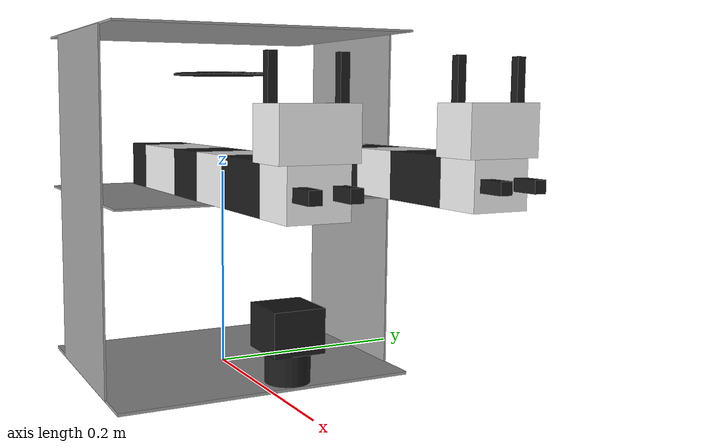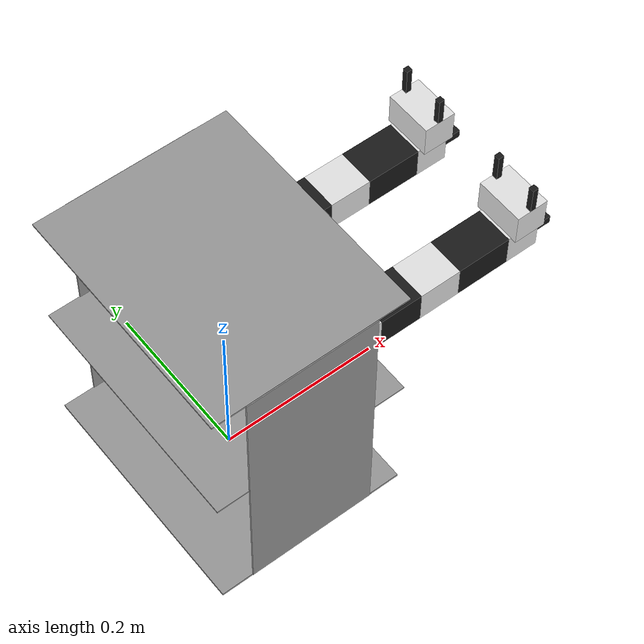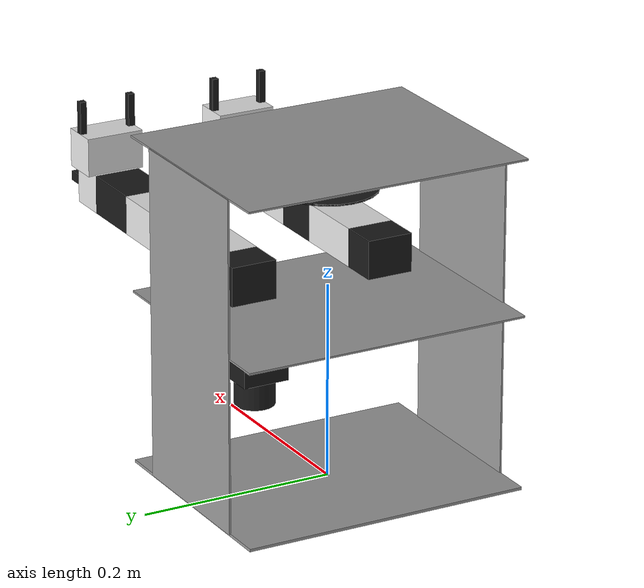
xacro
<?xml version="1.0"?>

<!-- XML namespaces -->
<robot xmlns:sensor="http://playerstage.sourceforge.net/gazebo/xmlschema/#sensor"
       xmlns:controller="http://playerstage.sourceforge.net/gazebo/xmlschema/#controller"
       xmlns:interface="http://playerstage.sourceforge.net/gazebo/xmlschema/#interface"
       xmlns:xacro="http://ros.org/wiki/xacro"
	   name="indomptable">

	<xacro:macro name="cyan1">
		<material name="cyan1">
			<color rgba="0 0.9 0.9 1.0"/>
		</material>
	</xacro:macro>

	<xacro:macro name="cyan2">
		<material name="cyan2">
	     <color rgba="0 0.7 0.7 1.0"/>
		</material>
	</xacro:macro>

	<xacro:macro name="cyan3">
		<material name="cyan3">
	     <color rgba="0 0.5 0.5 1.0"/>
		</material>
	</xacro:macro>

	<xacro:macro name="black">
		<material name="black">
			<color rgba="0.1 0.1 0.1 1.0"/>
		</material>
	</xacro:macro>

	<xacro:macro name="black1">
		<material name="black1">
			<color rgba="0.2 0.2 0.2 1.0"/>
		</material>
	</xacro:macro>

	<xacro:macro name="yellow2">
		<material name="yellow2">
			<color rgba="0.8 0.8 0 1.0"/>
		</material>
	</xacro:macro>

	<xacro:macro name="green1">
		<material name="green1">
			<color rgba="0 1 0 1.0"/>
		</material>
	</xacro:macro>

	<xacro:macro name="green2">
		<material name="green2">
			<color rgba="0.1 0.8 0 1.0"/>
		</material>
	</xacro:macro>

	<xacro:macro name="green3">
		<material name="green3">
			<color rgba="0.1 0.5 0.1 1.0"/>
		</material>
	</xacro:macro>

	<xacro:macro name="grey1">
		<material name="grey1">
			<color rgba="0.9 0.9 0.9 1.0"/>
		</material>
	</xacro:macro>

	<xacro:macro name="grey2">
		<material name="grey2">
			<color rgba="0.6 0.6 0.6 1.0"/>
		</material>
	</xacro:macro>

	<xacro:macro name="grey3">
		<material name="grey3">
			<color rgba="0.8 0.8 0.8 1.0"/>
		</material>
	</xacro:macro>

	<xacro:macro name="blue1">
		<material name="blue1">
			<color rgba="0 0 0.9 1.0"/>
		</material>
	</xacro:macro>

	<xacro:macro name="ax12_color">
		<material name="ax12_color">
			<color rgba="0.1 0.1 0.1 1.0"/>
		</material>
	</xacro:macro>

	<xacro:macro name="bracket_color">
		<material name="bracket_color">
			<color rgba="0.9 0.9 0.9 1.0"/>
		</material>
	</xacro:macro>

	<xacro:macro name="ax12" params="name xyz rpy">
		<link name="${name}">
			<visual>
				<origin xyz="${xyz}" rpy="${rpy}" />
				<geometry>
					<box size="0.5 0.32 0.38" />
				</geometry>
				<material name="black1">
					<color rgba="0.2 0.2 0.2 1.0"/>
				</material>
             </visual>
             <collision>
				<origin xyz="${xyz}" rpy="${rpy}" />
					<geometry>
						<box size="0.5 0.32 0.38" />
					</geometry>
             </collision>
             <xacro:default_inertial mass="0.055" />
        </link>
        <xacro:default_gazebo name="${name}" material="Gazebo/FlatBlack" />
	</xacro:macro>

	<xacro:macro name="bracket1" params="name xyz rpy">
		<link name="${name}">
			<visual>
				<origin xyz="${xyz}" rpy="${rpy}" />
				<geometry>
					<box size="0.05 0.025 0.038" />
				</geometry>
				<material name="black1">
					<color rgba="0.2 0.2 0.2 1.0"/>
				</material>
             </visual>
             <collision>
				<origin xyz="${xyz}" rpy="${rpy}" />
					<geometry>
						<box size="0.05 0.025 0.038" />
					</geometry>
             </collision>
             <xacro:default_inertial mass="0.02" />
        </link>
        <xacro:default_gazebo name="${name}" material="Gazebo/WhiteEmissive" />
	</xacro:macro>

	<xacro:macro name="my_box" params="name lwh xyz rpy mass material *rviz_color">
		<link name="${name}">
			<visual>
				<origin xyz="${xyz}" rpy="${rpy}" />
				<geometry>
					<box size="${lwh}" />
				</geometry>
			    <xacro:insert_block name="rviz_color" />
             </visual>
             <collision>
				<origin xyz="${xyz}" rpy="${rpy}" />
					<geometry>
						<box size="${lwh}" />
					</geometry>
             </collision>
             <xacro:default_inertial mass="${mass}" />
        </link>
        <xacro:default_gazebo name="${name}" material="${material}" />
	</xacro:macro>

	<xacro:macro name="my_cylinder" params="name l r xyz rpy mass material *rviz_color">
		<link name="${name}">
			<visual>
				<origin xyz="${xyz}" rpy="${rpy}" />
				<geometry>
					<cylinder length="${l}" radius="${r}" />
				</geometry>
            	<xacro:insert_block name="rviz_color" />
            </visual>
            <collision>
				<origin xyz="${xyz}" rpy="${rpy}" />
					<geometry>
						<cylinder length="${l}" radius="${r}" />
					</geometry>
            </collision>
            <xacro:default_inertial mass="${mass}" />
        </link>
        <xacro:default_gazebo name="${name}" material="${material}" />
	</xacro:macro>

    <xacro:macro name="default_inertial" params="mass">
		<inertial>
			<mass value="${mass}" />
			<inertia ixx="0.001" ixy="0.0" ixz="0.0"
                     iyy="0.001" iyz="0.0"
                     izz="0.001" />
			</inertial>
    </xacro:macro>

    <xacro:macro name="default_gazebo" params="name material">
 		<gazebo reference="${name}">
			<material>${material}</material>
			<selfCollide>false</selfCollide>
			<turnGravityOff>true</turnGravityOff>
		</gazebo>
    </xacro:macro>

 	<!-- ============================   Body   ============================ -->

	<xacro:my_box name="base_link" lwh="0.24 0.3 0.003" xyz="0 0 0" rpy="0 0 0" mass="0.5" material="Gazebo/Grey">
		<xacro:grey2 />
	</xacro:my_box>

	<xacro:my_box name="arm_level_link" lwh="0.24 0.3 0.002" xyz="0 0 0" rpy="0 0 0" mass="0.5" material="Gazebo/Grey">
		<xacro:grey2 />
	</xacro:my_box>

        <xacro:my_box name="right_panel" lwh="0.16 0.002 0.34" xyz="0 0 0" rpy="0 0 0" mass="0.5" material="Gazebo/Grey">
                <xacro:grey2 />
        </xacro:my_box>

        <xacro:my_box name="left_panel" lwh="0.16 0.002 0.34" xyz="0 0 0" rpy="0 0 0" mass="0.5" material="Gazebo/Grey">
                <xacro:grey2 />
        </xacro:my_box>

        <xacro:my_box name="top_level" lwh="0.24 0.3 0.002" xyz="0 0 0" rpy="0 0 0" mass="0.5" material="Gazebo/Grey">
                <xacro:grey2 />
        </xacro:my_box>

        <xacro:my_box name="base_laser" lwh="0.05 0.05 0.041" xyz="0 0 0" rpy="0 0 0" mass="0.5" material="Gazebo/FlatBlack">
                <xacro:ax12_color />
        </xacro:my_box>

        <xacro:my_cylinder name="hokuyo_laser" l="0.029" r="0.021" xyz="0 0 0" rpy="0 0 0" mass="0.5" material="Gazebo/FlatBlack">
                <xacro:ax12_color />
        </xacro:my_cylinder>

        <xacro:my_cylinder name="gros_base_laser_link" l="0.002" r="0.05" xyz="0 0 0" rpy="0 0 0" mass="0.5" material="Gazebo/FlatBlack">
                <xacro:ax12_color />
        </xacro:my_cylinder>

        <xacro:my_cylinder name="gros_neato_link" l="0.002" r="0.05" xyz="0 0 0" rpy="0 0 0" mass="0.5" material="Gazebo/FlatBlack">
                <xacro:ax12_color />
        </xacro:my_cylinder>

 	<!-- ============================   Arms   ============================ -->

                <xacro:my_box name="Rlink1" lwh="0.04 0.048 0.04" xyz="-0.02 0 0" rpy="0 0 0" mass="0.055" material="Gazebo/FlatBlack">
                        <xacro:ax12_color />
                </xacro:my_box>

		<xacro:my_box name="Rlink2" lwh="0.0797 0.048 0.04" xyz="0.03985 0 0" rpy="0 0 0" mass="0.055" material="Gazebo/WhiteEmissive">
                        <xacro:bracket_color />
                </xacro:my_box>

                <xacro:my_box name="Rlink3" lwh="0.053 0.048 0.04" xyz="0.0265 0 0" rpy="0 0 0" mass="0.05" material="Gazebo/FlatBlack">
                        <xacro:ax12_color />
                </xacro:my_box>

                <xacro:my_box name="Rlink4" lwh="0.052 0.048 0.04" xyz="0.026 0 0" rpy="0 0 0" mass="0.05" material="Gazebo/WhiteEmissive">
                        <xacro:bracket_color />
                </xacro:my_box>

                <xacro:my_box name="Rlink5" lwh="0.0675 0.048 0.04" xyz="0.03375 0 0" rpy="0 0 0" mass="0.05" material="Gazebo/FlatBlack">
                        <xacro:ax12_color />
                </xacro:my_box>

                <xacro:my_box name="Rlink6" lwh="0.0415 0.048 0.04" xyz="0.02075 0 0" rpy="0 0 0" mass="0.05" material="Gazebo/WhiteEmissive">
                        <xacro:bracket_color />
                </xacro:my_box>

                <xacro:my_box name="Rlink7" lwh="0.0001 0.0001 0.0001" xyz="0.00005 0 0" rpy="0 0 0" mass="0.05" material="Gazebo/WhiteEmissive">
                        <xacro:bracket_color />
                </xacro:my_box>

                <xacro:my_box name="Rlink_base_grip" lwh="0.04 0.061 0.04" xyz="0.0 0 0" rpy="0 0 0" mass="0.05" material="Gazebo/WhiteEmissive">
                        <xacro:bracket_color />
                </xacro:my_box>

                <xacro:my_box name="Rlink_finger1" lwh="0.007 0.007 0.034" xyz="0.0 0 0" rpy="0 0 0" mass="0.05" material="Gazebo/FlatBlack">
                        <xacro:ax12_color />
                </xacro:my_box>

                <xacro:my_box name="Rlink_finger2" lwh="0.007 0.007 0.034" xyz="0.0 0 0" rpy="0 0 0" mass="0.05" material="Gazebo/FlatBlack">
                        <xacro:ax12_color />
                </xacro:my_box>

                <xacro:my_box name="Rlink_pump1" lwh="0.022 0.01 0.01" xyz="0.0 0 0" rpy="0 0 0" mass="0.05" material="Gazebo/FlatBlack">
                        <xacro:ax12_color />
                </xacro:my_box>

                <xacro:my_box name="Rlink_pump2" lwh="0.022 0.01 0.01" xyz="0.0 0 0" rpy="0 0 0" mass="0.05" material="Gazebo/FlatBlack">
                        <xacro:ax12_color />
                </xacro:my_box>

                <xacro:my_box name="Llink1" lwh="0.04 0.048 0.04" xyz="-0.02 0 0" rpy="0 0 0" mass="0.055" material="Gazebo/FlatBlack">
                        <xacro:ax12_color />
                </xacro:my_box>

                <xacro:my_box name="Llink2" lwh="0.0797 0.048 0.04" xyz="0.03985 0 0" rpy="0 0 0" mass="0.055" material="Gazebo/WhiteEmissive">
                        <xacro:bracket_color />
                </xacro:my_box>

                <xacro:my_box name="Llink3" lwh="0.053 0.048 0.04" xyz="0.0265 0 0" rpy="0 0 0" mass="0.05" material="Gazebo/FlatBlack">
                        <xacro:ax12_color />
                </xacro:my_box>

                <xacro:my_box name="Llink4" lwh="0.052 0.048 0.04" xyz="0.026 0 0" rpy="0 0 0" mass="0.05" material="Gazebo/WhiteEmissive">
                        <xacro:bracket_color />
                </xacro:my_box>

                <xacro:my_box name="Llink5" lwh="0.0675 0.048 0.04" xyz="0.03375 0 0" rpy="0 0 0" mass="0.05" material="Gazebo/FlatBlack">
                        <xacro:ax12_color />
                </xacro:my_box>

                <xacro:my_box name="Llink6" lwh="0.04 0.048 0.04" xyz="0.02 0 0" rpy="0 0 0" mass="0.05" material="Gazebo/WhiteEmissive">
                        <xacro:bracket_color />
                </xacro:my_box>

                <xacro:my_box name="Llink7" lwh="0.0001 0.0001 0.0001" xyz="0.00005 0 0" rpy="0 0 0" mass="0.05" material="Gazebo/WhiteEmissive">
                        <xacro:bracket_color />
                </xacro:my_box>

                <xacro:my_box name="Llink_base_grip" lwh="0.04 0.061 0.04" xyz="0.0 0 0" rpy="0 0 0" mass="0.05" material="Gazebo/WhiteEmissive">
                        <xacro:bracket_color />
                </xacro:my_box>

                <xacro:my_box name="Llink_finger1" lwh="0.007 0.007 0.034" xyz="0.0 0 0" rpy="0 0 0" mass="0.05" material="Gazebo/FlatBlack">
                        <xacro:ax12_color />
                </xacro:my_box>

                <xacro:my_box name="Llink_finger2" lwh="0.007 0.007 0.034" xyz="0.0 0 0" rpy="0 0 0" mass="0.05" material="Gazebo/FlatBlack">
                        <xacro:ax12_color />
                </xacro:my_box>

                <xacro:my_box name="Llink_pump1" lwh="0.022 0.01 0.01" xyz="0.0 0 0" rpy="0 0 0" mass="0.05" material="Gazebo/FlatBlack">
                        <xacro:ax12_color />
                </xacro:my_box>

                <xacro:my_box name="Llink_pump2" lwh="0.022 0.01 0.01" xyz="0.0 0 0" rpy="0 0 0" mass="0.05" material="Gazebo/FlatBlack">
                        <xacro:ax12_color />
                </xacro:my_box>

	<!-- =================== Joint Definitions ==================== -->

        <joint name="arm_level_joint" type="fixed">
        <parent link="base_link" />
        <child link="arm_level_link" />
        <origin xyz="0 0 0.180" rpy="0 0 0" />
        </joint>

        <joint name="rightarm_joint" type="fixed">
        <parent link="arm_level_link" />
        <child link="Rlink1" />
        <origin xyz="0.05 -0.075 0.032" rpy="0 0 0" />
        </joint>

        <joint name="leftarm_joint" type="fixed">
        <parent link="arm_level_link" />
        <child link="Llink1" />
        <origin xyz="0.05 0.075 0.032" rpy="0 0 0" />
        </joint>

        <joint name="left_panel_joint" type="fixed">
        <parent link="base_link" />
        <child link="left_panel" />
        <origin xyz="0 0.15 0.17" rpy="0 0 0" />
        </joint>

        <joint name="right_panel_joint" type="fixed">
        <parent link="base_link" />
        <child link="right_panel" />
        <origin xyz="0 -0.15 0.17" rpy="0 0 0" />
        </joint>

        <joint name="top_level_joint" type="fixed">
        <parent link="base_link" />
        <child link="top_level" />
        <origin xyz="0 0 0.34" rpy="0 0 0" />
        </joint>

	<!-- =================== LASER Definitions ==================== -->

        <joint name="base_laser_joint" type="prismatic">
        <parent link="base_link" />
        <child link="base_laser" />
        <origin xyz="0.15 0 0.07" rpy="0 0 0" />
        <limit lower="0.0" upper="0.15" effort="10" velocity="3" />
        <axis xyz="0 0 1" />
        </joint>

        <joint name="laser_joint" type="fixed">
        <parent link="base_laser" />
        <child link="hokuyo_laser" />
        <origin xyz="0 0 -0.035" rpy="3.141592653 0 0" />
        </joint>

        <joint name="gros_base_laser_joint" type="fixed">
        <parent link="top_level" />
        <child link="gros_base_laser_link" />
        <origin xyz="0.0 0.0 -0.04" rpy="0 0 0" />
        </joint>

        <joint name="gros_neato_joint" type="fixed">
        <parent link="gros_base_laser_link" />
        <child link="gros_neato_link" />
        <origin xyz="0 0.0 0.0" rpy="3.141592653 0 0" />
        </joint>

 	<!-- =================== RIGHT ARM Definitions ==================== -->

        <joint name="Rarm1_joint" type="revolute">
        <parent link="Rlink1" />
        <child link="Rlink2" />
        <origin xyz="0.0 0 0" rpy="0 0 0" />
        <limit lower="-0.53" upper="0.53" effort="10" velocity="3" />
        <axis xyz="0 0 1" />
        <dynamics damping="0.0"/>
        </joint>

        <joint name="Rarm2_joint" type="revolute">
        <parent link="Rlink2" />
        <child link="Rlink3" />
        <origin xyz="0.0797 0 0" rpy="0 0 0" />
        <limit lower="-2.53" upper="1.57" effort="10" velocity="3" />
        <axis xyz="0 1 0" />
        <dynamics damping="0.0"/>
        </joint>

        <joint name="Rarm3_joint" type="revolute">
        <parent link="Rlink3" />
        <child link="Rlink4" />
        <origin xyz="0.053 0 0" rpy="0 0 0" />
        <limit lower="-2.53" upper="2.53" effort="10" velocity="3" />
        <axis xyz="1 0 0" />
        <dynamics damping="0.0"/>
        </joint>

        <joint name="Rarm4_joint" type="revolute">
        <parent link="Rlink4" />
        <child link="Rlink5" />
        <origin xyz="0.052 0 0" rpy="0 0 0" />
        <limit lower="-2.3" upper="2.3" effort="10" velocity="3" />
        <axis xyz="0 1 0" />
        <dynamics damping="0.0"/>
        </joint>

        <joint name="Rarm5_joint" type="revolute">
        <parent link="Rlink5" />
        <child link="Rlink6" />
        <origin xyz="0.0675 0 0" rpy="0 0 0" />
        <limit lower="-1.57" upper="1.57" effort="10" velocity="3" />
        <axis xyz="0 1 0" />
        <dynamics damping="0.0"/>
        </joint>

        <joint name="Rarm6_joint" type="revolute">
        <parent link="Rlink6" />
        <child link="Rlink7" />
        <origin xyz="0.0 0 0" rpy="0 0 0" />
        <limit lower="-2.53" upper="2.53" effort="10" velocity="3" />
        <axis xyz="1 0 0" />
        <dynamics damping="0.0"/>
        </joint>

        <joint name="Rlink_base_grip_joint" type="fixed">
        <parent link="Rlink6" />
        <child link="Rlink_base_grip" />
        <origin xyz="0.023 0.0 0.039" rpy="0 0 0" />
        </joint>

        <joint name="Rlink_finger1_joint" type="fixed">
        <parent link="Rlink_base_grip" />
        <child link="Rlink_finger1" />
        <origin xyz="0.0 0.027 0.037" rpy="0 0 0" />
        </joint>

        <joint name="Rlink_finger2_joint" type="fixed">
        <parent link="Rlink_base_grip" />
        <child link="Rlink_finger2" />
        <origin xyz="0.0 -0.027 0.037" rpy="0 0 0" />
        </joint>

        <joint name="Rlink_pump1_joint" type="fixed">
        <parent link="Rlink6" />
        <child link="Rlink_pump1" />
        <origin xyz="0.0525 0.015 0.0" rpy="0 0 0" />
        </joint>

        <joint name="Rlink_pump2_joint" type="fixed">
        <parent link="Rlink6" />
        <child link="Rlink_pump2" />
        <origin xyz="0.0525 -0.015 0.0" rpy="0 0 0" />
        </joint>

	<!-- =================== LEFT ARM Definitions ==================== -->

        <joint name="Larm1_joint" type="revolute">
        <parent link="Llink1" />
        <child link="Llink2" />
        <origin xyz="0.0 0 0" rpy="0 0 0" />
        <limit lower="-2.53" upper="2.53" effort="10" velocity="3" />
        <axis xyz="0 0 1" />
        <dynamics damping="0.0"/>
        </joint>

        <joint name="Larm2_joint" type="revolute">
        <parent link="Llink2" />
        <child link="Llink3" />
        <origin xyz="0.0797 0 0" rpy="0 0 0" />
        <limit lower="-2.53" upper="2.53" effort="10" velocity="3" />
        <axis xyz="0 1 0" />
        <dynamics damping="0.0"/>
        </joint>

        <joint name="Larm3_joint" type="revolute">
        <parent link="Llink3" />
        <child link="Llink4" />
        <origin xyz="0.053 0 0" rpy="0 0 0" />
        <limit lower="-2.53" upper="2.53" effort="10" velocity="3" />
        <axis xyz="1 0 0" />
        <dynamics damping="0.0"/>
        </joint>

        <joint name="Larm4_joint" type="revolute">
        <parent link="Llink4" />
        <child link="Llink5" />
        <origin xyz="0.052 0 0" rpy="0 0 0" />
        <limit lower="-2.53" upper="2.53" effort="10" velocity="3" />
        <axis xyz="0 1 0" />
        <dynamics damping="0.0"/>
        </joint>

        <joint name="Larm5_joint" type="revolute">
        <parent link="Llink5" />
        <child link="Llink6" />
        <origin xyz="0.0675 0 0" rpy="0 0 0" />
        <limit lower="-2.53" upper="2.53" effort="10" velocity="3" />
        <axis xyz="0 1 0" />
        <dynamics damping="0.0"/>
        </joint>

        <joint name="Larm6_joint" type="revolute">
        <parent link="Llink6" />
        <child link="Llink7" />
        <origin xyz="0.0 0 0" rpy="0 0 0" />
        <limit lower="-2.53" upper="2.53" effort="10" velocity="3" />
        <axis xyz="1 0 0" />
        <dynamics damping="0.0"/>
        </joint>

        <joint name="Llink_base_grip_joint" type="fixed">
        <parent link="Llink6" />
        <child link="Llink_base_grip" />
        <origin xyz="0.023 0.0 0.039" rpy="0 0 0" />
        </joint>

        <joint name="Llink_finger1_joint" type="fixed">
        <parent link="Llink_base_grip" />
        <child link="Llink_finger1" />
        <origin xyz="0.0 0.027 0.037" rpy="0 0 0" />
        </joint>

        <joint name="Llink_finger2_joint" type="fixed">
        <parent link="Llink_base_grip" />
        <child link="Llink_finger2" />
        <origin xyz="0.0 -0.027 0.037" rpy="0 0 0" />
        </joint>

        <joint name="Llink_pump1_joint" type="fixed">
        <parent link="Llink6" />
        <child link="Llink_pump1" />
        <origin xyz="0.0525 0.015 0.0" rpy="0 0 0" />
        </joint>

        <joint name="Llink_pump2_joint" type="fixed">
        <parent link="Llink6" />
        <child link="Llink_pump2" />
        <origin xyz="0.0525 -0.015 0.0" rpy="0 0 0" />
        </joint>

	<gazebo reference="indomptable">
  	</gazebo>
</robot>
